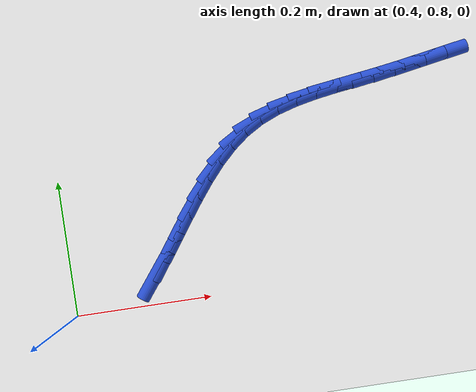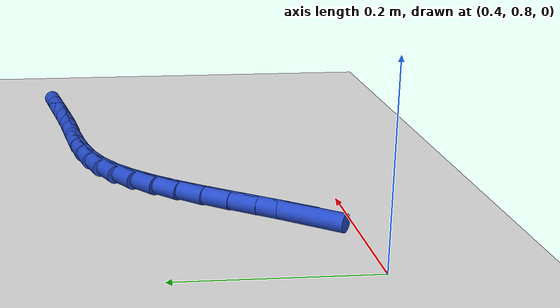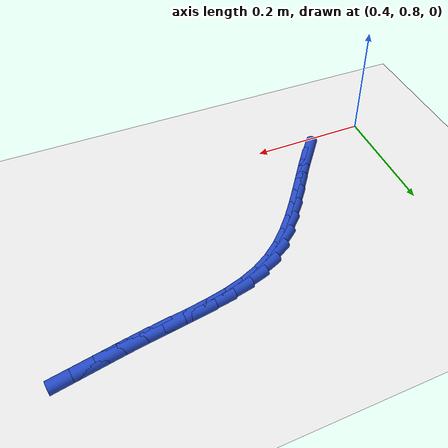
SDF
<sdf version="1.6">
 <world name="default">
  <model name="ground_plane">
   <static>1</static>
   <link name="link">
    <collision name="collision">
     <geometry><plane><normal>0 0 1</normal><size>100 100</size></plane></geometry>
     <surface><friction><ode><mu>100</mu><mu2>50</mu2></ode></friction></surface>
    </collision>
    <visual name="visual">
     <cast_shadows>0</cast_shadows>
     <geometry><plane><normal>0 0 1</normal><size>100 100</size></plane></geometry>
     <material>
      <script><uri>file://media/materials/scripts/gazebo.material</uri><name>Gazebo/WhiteGlow</name></script>
     </material>
    </visual>
   </link>
  </model>
  <model name="line">
   <link name="link_35">
    <pose>0.5256115331539314 0.8452503467688447 0.01 0 1.57 0.9177906173250896</pose>
    <collision name="collision">
     <geometry><cylinder><radius>0.01</radius><length>0.08</length></cylinder></geometry>
    </collision>
    <visual name="visual">
     <material>
      <script><name>Gazebo/Blue</name><uri>file://media/materials/scripts/gazebo.material</uri></script>
     </material>
     <geometry><cylinder><radius>0.01</radius><length>0.08</length></cylinder></geometry>
    </visual>
   </link>
   <link name="link_36">
    <pose>0.5449591954205995 0.8705427966161362 0.01 0 1.57 0.9463560596398295</pose>
    <collision name="collision">
     <geometry><cylinder><radius>0.01</radius><length>0.08</length></cylinder></geometry>
    </collision>
    <visual name="visual">
     <material>
      <script><name>Gazebo/Blue</name><uri>file://media/materials/scripts/gazebo.material</uri></script>
     </material>
     <geometry><cylinder><radius>0.01</radius><length>0.08</length></cylinder></geometry>
    </visual>
   </link>
   <link name="link_37">
    <pose>0.5636616801418621 0.896495628161869 0.01 0 1.57 0.95472931715663</pose>
    <collision name="collision">
     <geometry><cylinder><radius>0.01</radius><length>0.08</length></cylinder></geometry>
    </collision>
    <visual name="visual">
     <material>
      <script><name>Gazebo/Blue</name><uri>file://media/materials/scripts/gazebo.material</uri></script>
     </material>
     <geometry><cylinder><radius>0.01</radius><length>0.08</length></cylinder></geometry>
    </visual>
   </link>
   <link name="link_38">
    <pose>0.5820993372269899 0.9225379544637006 0.01 0 1.57 0.9429369674868294</pose>
    <collision name="collision">
     <geometry><cylinder><radius>0.01</radius><length>0.08</length></cylinder></geometry>
    </collision>
    <visual name="visual">
     <material>
      <script><name>Gazebo/Blue</name><uri>file://media/materials/scripts/gazebo.material</uri></script>
     </material>
     <geometry><cylinder><radius>0.01</radius><length>0.08</length></cylinder></geometry>
    </visual>
   </link>
   <link name="link_39">
    <pose>0.6006525165852534 0.9480988885792894 0.01 0 1.57 0.9100897329212555</pose>
    <collision name="collision">
     <geometry><cylinder><radius>0.01</radius><length>0.08</length></cylinder></geometry>
    </collision>
    <visual name="visual">
     <material>
      <script><name>Gazebo/Blue</name><uri>file://media/materials/scripts/gazebo.material</uri></script>
     </material>
     <geometry><cylinder><radius>0.01</radius><length>0.08</length></cylinder></geometry>
    </visual>
   </link>
   <link name="link_40">
    <pose>0.6197015681259226 0.9726075435662926 0.01 0 1.57 0.8544347972120412</pose>
    <collision name="collision">
     <geometry><cylinder><radius>0.01</radius><length>0.08</length></cylinder></geometry>
    </collision>
    <visual name="visual">
     <material>
      <script><name>Gazebo/Blue</name><uri>file://media/materials/scripts/gazebo.material</uri></script>
     </material>
     <geometry><cylinder><radius>0.01</radius><length>0.08</length></cylinder></geometry>
    </visual>
   </link>
   <link name="link_41">
    <pose>0.6396268417582678 0.9954930324823682 0.01 0 1.57 0.7736869410631354</pose>
    <collision name="collision">
     <geometry><cylinder><radius>0.01</radius><length>0.08</length></cylinder></geometry>
    </collision>
    <visual name="visual">
     <material>
      <script><name>Gazebo/Blue</name><uri>file://media/materials/scripts/gazebo.material</uri></script>
     </material>
     <geometry><cylinder><radius>0.01</radius><length>0.08</length></cylinder></geometry>
    </visual>
   </link>
   <link name="link_42">
    <pose>0.66080868739156 1.0161844683851746 0.01 0 1.57 0.6659005265900584</pose>
    <collision name="collision">
     <geometry><cylinder><radius>0.01</radius><length>0.08</length></cylinder></geometry>
    </collision>
    <visual name="visual">
     <material>
      <script><name>Gazebo/Blue</name><uri>file://media/materials/scripts/gazebo.material</uri></script>
     </material>
     <geometry><cylinder><radius>0.01</radius><length>0.08</length></cylinder></geometry>
    </visual>
   </link>
   <link name="link_43">
    <pose>0.6836274549350689 1.0341109643323692 0.01 0 1.57 0.5314114012457416</pose>
    <collision name="collision">
     <geometry><cylinder><radius>0.01</radius><length>0.08</length></cylinder></geometry>
    </collision>
    <visual name="visual">
     <material>
      <script><name>Gazebo/Blue</name><uri>file://media/materials/scripts/gazebo.material</uri></script>
     </material>
     <geometry><cylinder><radius>0.01</radius><length>0.08</length></cylinder></geometry>
    </visual>
   </link>
   <link name="link_44">
    <pose>0.7084598205210532 1.0487077893040606 0.01 0 1.57 0.3924067201322256</pose>
    <collision name="collision">
     <geometry><cylinder><radius>0.01</radius><length>0.08</length></cylinder></geometry>
    </collision>
    <visual name="visual">
     <material>
      <script><name>Gazebo/Blue</name><uri>file://media/materials/scripts/gazebo.material</uri></script>
     </material>
     <geometry><cylinder><radius>0.01</radius><length>0.08</length></cylinder></geometry>
    </visual>
   </link>
   <link name="link_45">
    <pose>0.7354124254588414 1.0598626930442647 0.01 0 1.57 0.28299546709065515</pose>
    <collision name="collision">
     <geometry><cylinder><radius>0.01</radius><length>0.08</length></cylinder></geometry>
    </collision>
    <visual name="visual">
     <material>
      <script><name>Gazebo/Blue</name><uri>file://media/materials/scripts/gazebo.material</uri></script>
     </material>
     <geometry><cylinder><radius>0.01</radius><length>0.08</length></cylinder></geometry>
    </visual>
   </link>
   <link name="link_46">
    <pose>0.7641420264823895 1.0682172692424816 0.01 0 1.57 0.20514347542160874</pose>
    <collision name="collision">
     <geometry><cylinder><radius>0.01</radius><length>0.08</length></cylinder></geometry>
    </collision>
    <visual name="visual">
     <material>
      <script><name>Gazebo/Blue</name><uri>file://media/materials/scripts/gazebo.material</uri></script>
     </material>
     <geometry><cylinder><radius>0.01</radius><length>0.08</length></cylinder></geometry>
    </visual>
   </link>
   <link name="link_47">
    <pose>0.7942627719635992 1.0744845078029719 0.01 0 1.57 0.15592012926868903</pose>
    <collision name="collision">
     <geometry><cylinder><radius>0.01</radius><length>0.08</length></cylinder></geometry>
    </collision>
    <visual name="visual">
     <material>
      <script><name>Gazebo/Blue</name><uri>file://media/materials/scripts/gazebo.material</uri></script>
     </material>
     <geometry><cylinder><radius>0.01</radius><length>0.08</length></cylinder></geometry>
    </visual>
   </link>
   <link name="link_48">
    <pose>0.8253888102743729 1.0793773986299975 0.01 0 1.57 0.13251446589228144</pose>
    <collision name="collision">
     <geometry><cylinder><radius>0.01</radius><length>0.08</length></cylinder></geometry>
    </collision>
    <visual name="visual">
     <material>
      <script><name>Gazebo/Blue</name><uri>file://media/materials/scripts/gazebo.material</uri></script>
     </material>
     <geometry><cylinder><radius>0.01</radius><length>0.08</length></cylinder></geometry>
    </visual>
   </link>
   <link name="link_49">
    <pose>0.8571342897866128 1.0836089316278192 0.01 0 1.57 0.13314166170793224</pose>
    <collision name="collision">
     <geometry><cylinder><radius>0.01</radius><length>0.08</length></cylinder></geometry>
    </collision>
    <visual name="visual">
     <material>
      <script><name>Gazebo/Blue</name><uri>file://media/materials/scripts/gazebo.material</uri></script>
     </material>
     <geometry><cylinder><radius>0.01</radius><length>0.08</length></cylinder></geometry>
    </visual>
   </link>
   <link name="link_50">
    <pose>0.8891133874812078 1.087892020138957 0.01 0 1.57 0.15070542576389961</pose>
    <collision name="collision">
     <geometry><cylinder><radius>0.01</radius><length>0.08</length></cylinder></geometry>
    </collision>
    <visual name="visual">
     <material>
      <script><name>Gazebo/Blue</name><uri>file://media/materials/scripts/gazebo.material</uri></script>
     </material>
     <geometry><cylinder><radius>0.01</radius><length>0.08</length></cylinder></geometry>
    </visual>
   </link>
   <link name="link_51">
    <pose>0.9210161028964097 1.092736665501395 0.01 0 1.57 0.16453330855834616</pose>
    <collision name="collision">
     <geometry><cylinder><radius>0.01</radius><length>0.08</length></cylinder></geometry>
    </collision>
    <visual name="visual">
     <material>
      <script><name>Gazebo/Blue</name><uri>file://media/materials/scripts/gazebo.material</uri></script>
     </material>
     <geometry><cylinder><radius>0.01</radius><length>0.08</length></cylinder></geometry>
    </visual>
   </link>
   <link name="link_52">
    <pose>0.9527728893615699 1.0980093803282718 0.01 0 1.57 0.17054085145520473</pose>
    <collision name="collision">
     <geometry><cylinder><radius>0.01</radius><length>0.08</length></cylinder></geometry>
    </collision>
    <visual name="visual">
     <material>
      <script><name>Gazebo/Blue</name><uri>file://media/materials/scripts/gazebo.material</uri></script>
     </material>
     <geometry><cylinder><radius>0.01</radius><length>0.08</length></cylinder></geometry>
    </visual>
   </link>
   <link name="link_53">
    <pose>0.984361754733883 1.1034494145169185 0.01 0 1.57 0.16866196655547902</pose>
    <collision name="collision">
     <geometry><cylinder><radius>0.01</radius><length>0.08</length></cylinder></geometry>
    </collision>
    <visual name="visual">
     <material>
      <script><name>Gazebo/Blue</name><uri>file://media/materials/scripts/gazebo.material</uri></script>
     </material>
     <geometry><cylinder><radius>0.01</radius><length>0.08</length></cylinder></geometry>
    </visual>
   </link>
  </model>
 </world>
</sdf>
